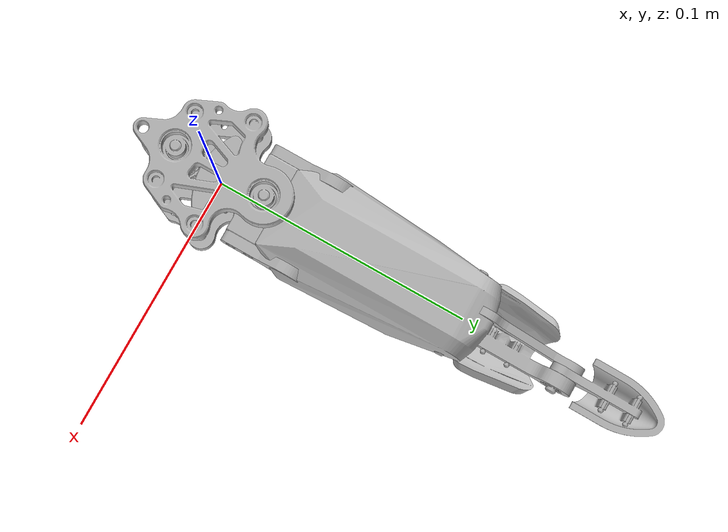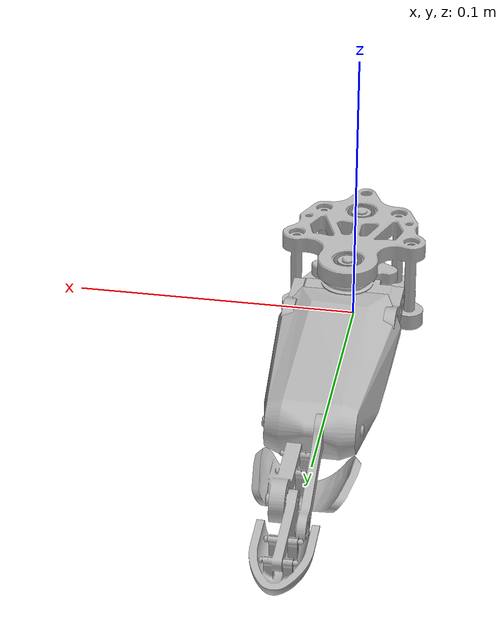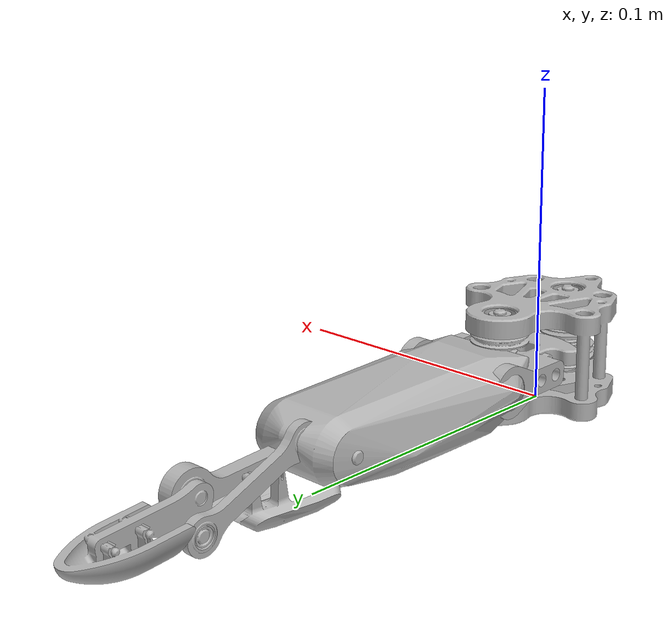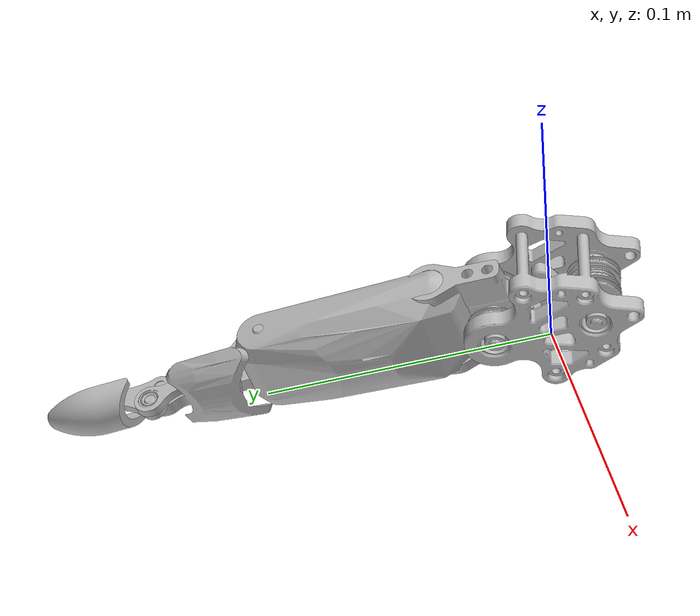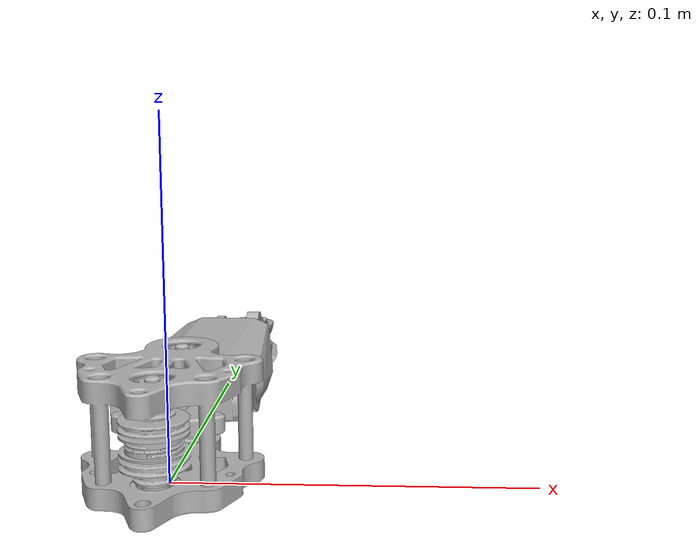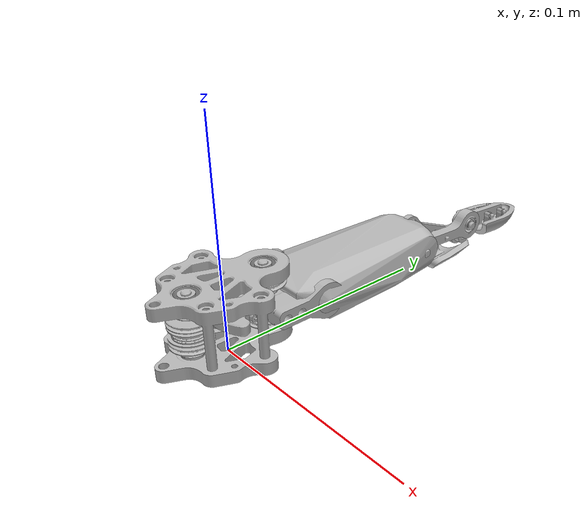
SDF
<?xml version="1.0"?>
<sdf version="1.9">
  <model name="finger">

  <!-- Generated by blender_export_sdf.py from /home/michael-jenz/rds_ws/finger_vizualization/src/drake-finger-sim/blender_files/rds_finger_4bar.blend -->
  <!-- Four-bar linkage: proximal_phalanx + middle_phalanx1/2 + distal_phalanx -->
  <!-- Loop-closing joint: dip_flex2 (middle_phalanx2 → distal_phalanx) -->

    <!-- ═══════════════ LINKS ═══════════════ -->

    <!-- Finger base -->
    <link name="base_link">
      <pose>0.0 0.0 0.0 0 0 0</pose>
      <visual name="visual">
        <geometry>
          <mesh>
            <uri>model:///Finger/meshes/visual/base_link.stl</uri>
          </mesh>
        </geometry>
      </visual>
      <collision name="collision">
        <geometry>
          <mesh>
            <uri>model:///Finger/meshes/collision/col_base_link.stl</uri>
          </mesh>
        </geometry>
      </collision>
      <inertial>
        <mass>0.05</mass>
        <inertia><ixx>1e-05</ixx><ixy>0</ixy><ixz>0</ixz><iyy>1e-05</iyy><iyz>0</iyz><izz>1e-05</izz></inertia>
      </inertial>
    </link>

    <!-- Space between MCP splay and flexion -->
    <link name="mcp_link">
      <pose>0.0 0.0196 0.017 0 0 0</pose>
      <visual name="visual">
        <geometry>
          <mesh>
            <uri>model:///Finger/meshes/visual/mcp_link.stl</uri>
          </mesh>
        </geometry>
      </visual>
      <collision name="collision">
        <geometry>
          <mesh>
            <uri>model:///Finger/meshes/collision/col_mcp_link.stl</uri>
          </mesh>
        </geometry>
      </collision>
      <inertial>
        <mass>0.01</mass>
        <inertia><ixx>1e-05</ixx><ixy>0</ixy><ixz>0</ixz><iyy>1e-05</iyy><iyz>0</iyz><izz>1e-05</izz></inertia>
      </inertial>
    </link>

    <!-- Proximal phalanx -->
    <link name="proximal_phalanx">
      <pose>0.0014 0.0374 0.017 0 0 0</pose>
      <visual name="visual">
        <geometry>
          <mesh>
            <uri>model:///Finger/meshes/visual/proximal_phalanx.stl</uri>
          </mesh>
        </geometry>
      </visual>
      <collision name="collision">
        <geometry>
          <mesh>
            <uri>model:///Finger/meshes/collision/col_proximal_phalanx.stl</uri>
          </mesh>
        </geometry>
      </collision>
      <inertial>
        <mass>0.01</mass>
        <inertia><ixx>1e-05</ixx><ixy>0</ixy><ixz>0</ixz><iyy>1e-05</iyy><iyz>0</iyz><izz>1e-05</izz></inertia>
      </inertial>
    </link>

    <!-- Middle phalanx 1 (four-bar coupler, dorsal) -->
    <link name="middle_phalanx1">
      <pose>-0.0001 0.0985 0.0153 0 0 0</pose>
      <visual name="visual">
        <geometry>
          <mesh>
            <uri>model:///Finger/meshes/visual/middle_phalanx1.stl</uri>
          </mesh>
        </geometry>
      </visual>
      <collision name="collision">
        <geometry>
          <mesh>
            <uri>model:///Finger/meshes/collision/col_middle_phalanx1.stl</uri>
          </mesh>
        </geometry>
      </collision>
      <inertial>
        <mass>0.008</mass>
        <inertia><ixx>5e-06</ixx><ixy>0</ixy><ixz>0</ixz><iyy>5e-06</iyy><iyz>0</iyz><izz>5e-06</izz></inertia>
      </inertial>
    </link>

    <!-- Middle phalanx 2 (four-bar coupler, volar) -->
    <link name="middle_phalanx2">
      <pose>-0.0019 0.1065 0.0191 0 0 0</pose>
      <visual name="visual">
        <geometry>
          <mesh>
            <uri>model:///Finger/meshes/visual/middle_phalanx2.stl</uri>
          </mesh>
        </geometry>
      </visual>
      <collision name="collision">
        <geometry>
          <mesh>
            <uri>model:///Finger/meshes/collision/col_middle_phalanx2.stl</uri>
          </mesh>
        </geometry>
      </collision>
      <inertial>
        <mass>0.008</mass>
        <inertia><ixx>5e-06</ixx><ixy>0</ixy><ixz>0</ixz><iyy>5e-06</iyy><iyz>0</iyz><izz>5e-06</izz></inertia>
      </inertial>
    </link>

    <!-- Distal phalanx -->
    <link name="distal_phalanx">
      <pose>0.0036 0.1391 0.0131 0 0 0</pose>
      <visual name="visual">
        <geometry>
          <mesh>
            <uri>model:///Finger/meshes/visual/distal_phalanx.stl</uri>
          </mesh>
        </geometry>
      </visual>
      <collision name="collision">
        <geometry>
          <mesh>
            <uri>model:///Finger/meshes/collision/col_distal_phalanx.stl</uri>
          </mesh>
        </geometry>
      </collision>
      <inertial>
        <mass>0.005</mass>
        <inertia><ixx>2e-06</ixx><ixy>0</ixy><ixz>0</ixz><iyy>2e-06</iyy><iyz>0</iyz><izz>2e-06</izz></inertia>
      </inertial>
    </link>

    <!-- ═══════════════ JOINTS ══════════════ -->

    <!-- Mcp Splay -->
    <joint name="mcp_splay" type="revolute">
      <pose relative_to="base_link">0.0 0.0196 0.017 0 0 0</pose>
      <parent>base_link</parent>
      <child>mcp_link</child>
      <axis>
        <xyz expressed_in="__model__">0.0 0.0 1.0</xyz>
        <limit>
          <lower>-0.174533</lower>
          <upper>0.174533</upper>
          <effort>5.0</effort>
          <velocity>3.14</velocity>
        </limit>
        <dynamics>
          <damping>0.1</damping>
          <friction>0.05</friction>
        </dynamics>
      </axis>
    </joint>

    <!-- Mcp Flexion -->
    <joint name="mcp_flexion" type="revolute">
      <pose relative_to="mcp_link">0.0014 0.0178 0.0 0 0 0</pose>
      <parent>mcp_link</parent>
      <child>proximal_phalanx</child>
      <axis>
        <xyz expressed_in="__model__">-1.0 0.0 0.0</xyz>
        <limit>
          <lower>0.0</lower>
          <upper>1.57</upper>
          <effort>5.0</effort>
          <velocity>3.14</velocity>
        </limit>
        <dynamics>
          <damping>0.1</damping>
          <friction>0.05</friction>
        </dynamics>
      </axis>
    </joint>

    <!-- Pip Flex1 -->
    <joint name="pip_flex1" type="revolute">
      <pose relative_to="proximal_phalanx">-0.0015 0.0611 -0.0017 0 0 0</pose>
      <parent>proximal_phalanx</parent>
      <child>middle_phalanx1</child>
      <axis>
        <xyz expressed_in="__model__">-1.0 0.0 0.0</xyz>
        <limit>
          <lower>0.0</lower>
          <upper>1.57</upper>
          <effort>5.0</effort>
          <velocity>3.14</velocity>
        </limit>
        <dynamics>
          <damping>0.1</damping>
          <friction>0.05</friction>
        </dynamics>
      </axis>
    </joint>

    <!-- Pip Flex2 -->
    <joint name="pip_flex2" type="revolute">
      <pose relative_to="proximal_phalanx">-0.0033 0.0691 0.0021 0 0 0</pose>
      <parent>proximal_phalanx</parent>
      <child>middle_phalanx2</child>
      <axis>
        <xyz expressed_in="__model__">-1.0 0.0 0.0</xyz>
        <limit>
          <lower>0.0</lower>
          <upper>1.57</upper>
          <effort>5.0</effort>
          <velocity>3.14</velocity>
        </limit>
        <dynamics>
          <damping>0.1</damping>
          <friction>0.05</friction>
        </dynamics>
      </axis>
    </joint>

    <!-- Dip Flex1 -->
    <joint name="dip_flex1" type="revolute">
      <pose relative_to="middle_phalanx1">0.0037 0.0406 -0.0022 0 0 0</pose>
      <parent>middle_phalanx1</parent>
      <child>distal_phalanx</child>
      <axis>
        <xyz expressed_in="__model__">-1.0 0.0 0.0</xyz>
        <limit>
          <lower>0.0</lower>
          <upper>1.57</upper>
          <effort>3.0</effort>
          <velocity>3.14</velocity>
        </limit>
        <dynamics>
          <damping>0.1</damping>
          <friction>0.05</friction>
        </dynamics>
      </axis>
    </joint>

    <!-- Dip Flex2 -->
    <joint name="dip_flex2" type="revolute">
      <pose relative_to="middle_phalanx2">0.0001 0.0348 -0.0147 0 0 0</pose>
      <parent>middle_phalanx2</parent>
      <child>distal_phalanx</child>
      <axis>
        <xyz expressed_in="__model__">-1.0 0.0 0.0</xyz>
        <limit>
          <lower>0.0</lower>
          <upper>1.57</upper>
          <effort>3.0</effort>
          <velocity>3.14</velocity>
        </limit>
        <dynamics>
          <damping>0.1</damping>
          <friction>0.05</friction>
        </dynamics>
      </axis>
    </joint>

  </model>
</sdf>
